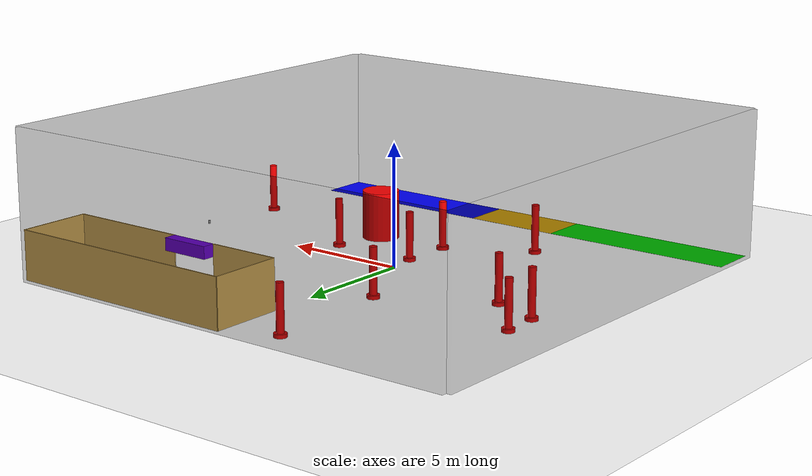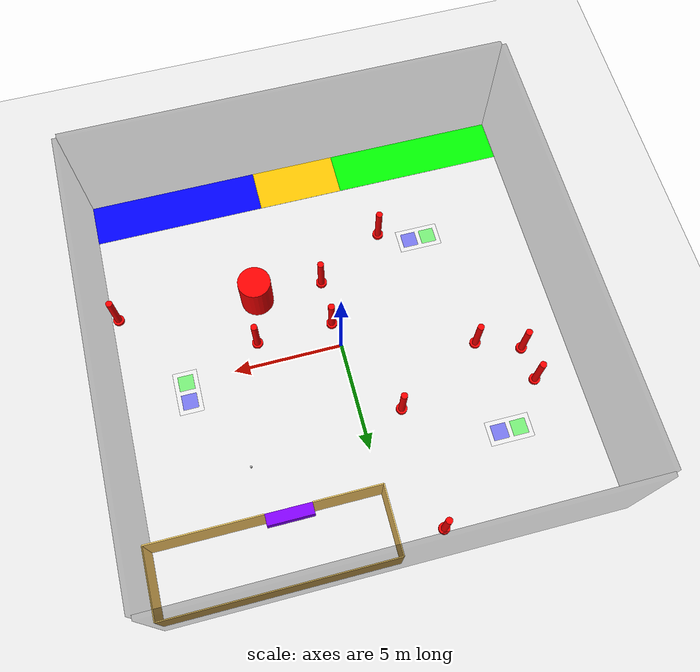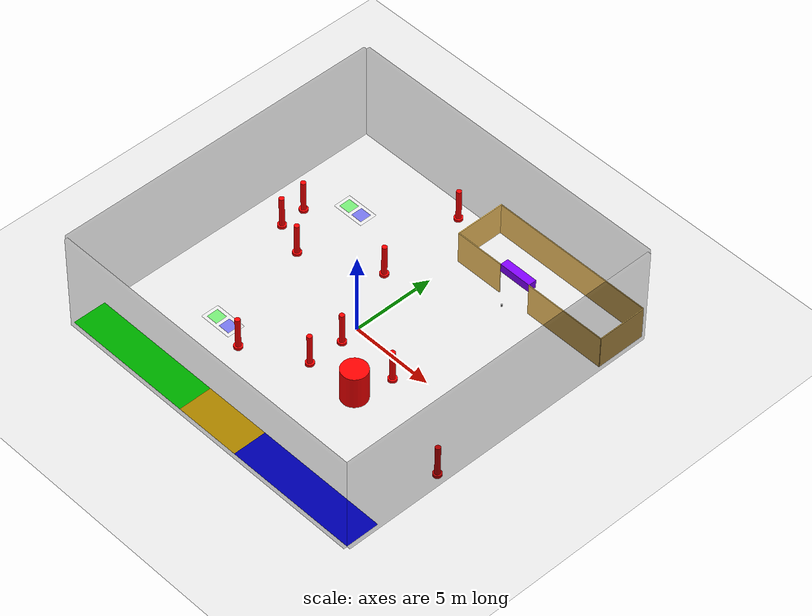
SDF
<sdf version='1.11'>
  <world name='safmc'>
    <gravity>0 0 -9.8000000000000007</gravity>
    <magnetic_field>5.5644999999999998e-06 2.2875799999999999e-05 -4.2388400000000002e-05</magnetic_field>
    <wind>
      <linear_velocity>0 0 0</linear_velocity>
    </wind>
    <physics name='default_physics' default='false' type='ode'>
      <max_step_size>0.0040000000000000001</max_step_size>
      <real_time_factor>1</real_time_factor>
      <max_contacts>20</max_contacts>
    </physics>
    <model name='ground_plane'>
      <static>true</static>
      <self_collide>false</self_collide>
      <allow_auto_disable>true</allow_auto_disable>
      <enable_wind>false</enable_wind>
      <pose>0 0 0 0 0 0</pose>
      <link name='link'>
        <pose>0 0 0 0 0 0</pose>
        <inertial>
          <pose>0 0 0 0 0 0</pose>
          <mass>1</mass>
          <inertia>
            <ixx>1</ixx>
            <ixy>0</ixy>
            <ixz>0</ixz>
            <iyy>1</iyy>
            <iyz>0</iyz>
            <izz>1</izz>
          </inertia>
        </inertial>
        <enable_wind>false</enable_wind>
        <collision name='collision'>
          <pose>0 0 0 0 0 0</pose>
          <geometry>
            <plane>
              <normal>0 0 1</normal>
              <size>25 25</size>
            </plane>
          </geometry>
          <surface>
            <contact>
              <collide_bitmask>255</collide_bitmask>
            </contact>
            <friction>
              <ode>
                <mu>1</mu>
                <mu2>1</mu2>
                <slip1>0</slip1>
                <slip2>0</slip2>
                <fdir1>0 0 0</fdir1>
              </ode>
            </friction>
          </surface>
        </collision>
        <visual name='visual'>
          <pose>0 0 0 0 0 0</pose>
          <geometry>
            <plane>
              <normal>0 0 1</normal>
              <size>25 25</size>
            </plane>
          </geometry>
          <cast_shadows>true</cast_shadows>
          <laser_retro>0</laser_retro>
          <transparency>0</transparency>
          <visibility_flags>4294967295</visibility_flags>
          <material>
            <ambient>0.800000012 0.800000012 0.800000012 1</ambient>
            <diffuse>0.800000012 0.800000012 0.800000012 1</diffuse>
            <specular>0.800000012 0.800000012 0.800000012 1</specular>
            <emissive>0 0 0 1</emissive>
            <render_order>0</render_order>
            <lighting>true</lighting>
            <double_sided>false</double_sided>
            <shader type='pixel'/>
          </material>
        </visual>
      </link>
    </model>
    <include>
      <uri>file://models/wall</uri>
      <name>front_wall</name>
      <pose>0 -10.1 2 0 0 0</pose>
      <static>true</static>
    </include>
    <include>
      <uri>file://models/wall</uri>
      <name>back_wall</name>
      <pose>0 10.1 2 0 0 0</pose>
      <static>true</static>
    </include>
    <include>
      <uri>file://models/wall</uri>
      <name>left_wall</name>
      <pose>-10.1 0 2 0 0 1.5707959999999999</pose>
      <static>true</static>
    </include>
    <include>
      <uri>file://models/wall</uri>
      <name>right_wall</name>
      <pose>10.1 0 2 0 0 1.5707959999999999</pose>
      <static>true</static>
    </include>
    <include>
      <uri>file://models/lidar</uri>
      <name>lidar</name>
      <pose>5.0999999999999996 5 2 0 0 1.5707959999999999</pose>
      <static>false</static>
    </include>
    <model name='launch_zone'>
      <static>true</static>
      <self_collide>false</self_collide>
      <allow_auto_disable>true</allow_auto_disable>
      <enable_wind>false</enable_wind>
      <pose>0 -9 0.001 0 0 0</pose>
      <link name='link'>
        <pose>0 0 0 0 0 0</pose>
        <inertial>
          <pose>0 0 0 0 0 0</pose>
          <mass>1</mass>
          <inertia>
            <ixx>1</ixx>
            <ixy>0</ixy>
            <ixz>0</ixz>
            <iyy>1</iyy>
            <iyz>0</iyz>
            <izz>1</izz>
          </inertia>
        </inertial>
        <enable_wind>false</enable_wind>
        <visual name='visual'>
          <pose>0 0 0 0 0 0</pose>
          <geometry>
            <plane>
              <normal>0 0 1</normal>
              <size>4 2</size>
            </plane>
          </geometry>
          <cast_shadows>true</cast_shadows>
          <laser_retro>0</laser_retro>
          <transparency>0</transparency>
          <visibility_flags>4294967295</visibility_flags>
          <material>
            <ambient>1 0.75 0 1</ambient>
            <diffuse>1 0.75 0 1</diffuse>
            <specular>1 0.75 0 1</specular>
            <emissive>0 0 0 1</emissive>
            <render_order>0</render_order>
            <lighting>true</lighting>
            <double_sided>false</double_sided>
            <shader type='pixel'/>
          </material>
        </visual>
      </link>
    </model>
    <model name='green_supply_zone'>
      <static>true</static>
      <self_collide>false</self_collide>
      <allow_auto_disable>true</allow_auto_disable>
      <enable_wind>false</enable_wind>
      <pose>-6 -9 0 0 0 0</pose>
      <link name='link'>
        <pose>0 0 0.001 0 0 0</pose>
        <inertial>
          <pose>0 0 0 0 0 0</pose>
          <mass>1</mass>
          <inertia>
            <ixx>1</ixx>
            <ixy>0</ixy>
            <ixz>0</ixz>
            <iyy>1</iyy>
            <iyz>0</iyz>
            <izz>1</izz>
          </inertia>
        </inertial>
        <enable_wind>false</enable_wind>
        <visual name='visual'>
          <pose>0 0 0 0 0 0</pose>
          <geometry>
            <plane>
              <normal>0 0 1</normal>
              <size>8 2</size>
            </plane>
          </geometry>
          <cast_shadows>true</cast_shadows>
          <laser_retro>0</laser_retro>
          <transparency>0</transparency>
          <visibility_flags>4294967295</visibility_flags>
          <material>
            <ambient>0 1 0 1</ambient>
            <diffuse>0 1 0 1</diffuse>
            <specular>0 1 0 1</specular>
            <emissive>0 0 0 1</emissive>
            <render_order>0</render_order>
            <lighting>true</lighting>
            <double_sided>false</double_sided>
            <shader type='pixel'/>
          </material>
        </visual>
      </link>
    </model>
    <model name='blue_supply_zone'>
      <static>true</static>
      <self_collide>false</self_collide>
      <allow_auto_disable>true</allow_auto_disable>
      <enable_wind>false</enable_wind>
      <pose>6 -9 0 0 0 0</pose>
      <link name='link'>
        <pose>0 0 0.001 0 0 0</pose>
        <inertial>
          <pose>0 0 0 0 0 0</pose>
          <mass>1</mass>
          <inertia>
            <ixx>1</ixx>
            <ixy>0</ixy>
            <ixz>0</ixz>
            <iyy>1</iyy>
            <iyz>0</iyz>
            <izz>1</izz>
          </inertia>
        </inertial>
        <enable_wind>false</enable_wind>
        <visual name='visual'>
          <pose>0 0 0 0 0 0</pose>
          <geometry>
            <plane>
              <normal>0 0 1</normal>
              <size>8 2</size>
            </plane>
          </geometry>
          <cast_shadows>true</cast_shadows>
          <laser_retro>0</laser_retro>
          <transparency>0</transparency>
          <visibility_flags>4294967295</visibility_flags>
          <material>
            <ambient>0 0 1 1</ambient>
            <diffuse>0 0 1 1</diffuse>
            <specular>0 0 1 1</specular>
            <emissive>0 0 0 1</emissive>
            <render_order>0</render_order>
            <lighting>true</lighting>
            <double_sided>false</double_sided>
            <shader type='pixel'/>
          </material>
        </visual>
      </link>
    </model>
    <include>
      <uri>file://models/bonus_zone</uri>
      <name>bonus_zone</name>
      <pose>5 8.5 1 0 0 0</pose>
      <static>true</static>
    </include>
    <model name='drop_zone_00'>
      <static>true</static>
      <self_collide>false</self_collide>
      <allow_auto_disable>true</allow_auto_disable>
      <enable_wind>false</enable_wind>
      <pose>-6.2134999999999998 5.6579699999999997 0 0 0 0</pose>
      <link name='link'>
        <pose>0 0 0 0 0 0</pose>
        <inertial>
          <pose>0 0 0 0 0 0</pose>
          <mass>1</mass>
          <inertia>
            <ixx>1</ixx>
            <ixy>0</ixy>
            <ixz>0</ixz>
            <iyy>1</iyy>
            <iyz>0</iyz>
            <izz>1</izz>
          </inertia>
        </inertial>
        <enable_wind>false</enable_wind>
        <visual name='drop_zone_visual'>
          <pose>0 0 0.001 0 0 0</pose>
          <geometry>
            <plane>
              <normal>0 0 1</normal>
              <size>2 1.1000000000000001</size>
            </plane>
          </geometry>
          <cast_shadows>true</cast_shadows>
          <laser_retro>0</laser_retro>
          <transparency>0</transparency>
          <visibility_flags>4294967295</visibility_flags>
          <material>
            <ambient>0.899999976 0.899999976 0.899999976 0.5</ambient>
            <diffuse>0.899999976 0.899999976 0.899999976 0.5</diffuse>
            <specular>0.899999976 0.899999976 0.899999976 0.5</specular>
            <emissive>0 0 0 1</emissive>
            <render_order>0</render_order>
            <lighting>true</lighting>
            <double_sided>false</double_sided>
            <shader type='pixel'/>
          </material>
        </visual>
        <visual name='green_hotspot_visual'>
          <pose>-0.45000000000000001 0 0.002 0 0 0</pose>
          <geometry>
            <plane>
              <normal>0 0 1</normal>
              <size>0.69999999999999996 0.69999999999999996</size>
            </plane>
          </geometry>
          <cast_shadows>true</cast_shadows>
          <laser_retro>0</laser_retro>
          <transparency>0</transparency>
          <visibility_flags>4294967295</visibility_flags>
          <material>
            <ambient>0 0.899999976 0 0.5</ambient>
            <diffuse>0 0.899999976 0 0.5</diffuse>
            <specular>0 0.899999976 0 0.5</specular>
            <emissive>0 0 0 1</emissive>
            <render_order>0</render_order>
            <lighting>true</lighting>
            <double_sided>false</double_sided>
            <shader type='pixel'/>
          </material>
        </visual>
        <visual name='blue_hotspot_visual'>
          <pose>0.45000000000000001 0 0.002 0 0 0</pose>
          <geometry>
            <plane>
              <normal>0 0 1</normal>
              <size>0.69999999999999996 0.69999999999999996</size>
            </plane>
          </geometry>
          <cast_shadows>true</cast_shadows>
          <laser_retro>0</laser_retro>
          <transparency>0</transparency>
          <visibility_flags>4294967295</visibility_flags>
          <material>
            <ambient>0 0 0.899999976 0.5</ambient>
            <diffuse>0 0 0.899999976 0.5</diffuse>
            <specular>0 0 0.899999976 0.5</specular>
            <emissive>0 0 0 1</emissive>
            <render_order>0</render_order>
            <lighting>true</lighting>
            <double_sided>false</double_sided>
            <shader type='pixel'/>
          </material>
        </visual>
      </link>
    </model>
    <model name='drop_zone_01'>
      <static>true</static>
      <self_collide>false</self_collide>
      <allow_auto_disable>true</allow_auto_disable>
      <enable_wind>false</enable_wind>
      <pose>-4.9895100000000001 -4.5204599999999999 0 0 0 0</pose>
      <link name='link'>
        <pose>0 0 0 0 0 0</pose>
        <inertial>
          <pose>0 0 0 0 0 0</pose>
          <mass>1</mass>
          <inertia>
            <ixx>1</ixx>
            <ixy>0</ixy>
            <ixz>0</ixz>
            <iyy>1</iyy>
            <iyz>0</iyz>
            <izz>1</izz>
          </inertia>
        </inertial>
        <enable_wind>false</enable_wind>
        <visual name='drop_zone_visual'>
          <pose>0 0 0.001 0 0 0</pose>
          <geometry>
            <plane>
              <normal>0 0 1</normal>
              <size>2 1.1000000000000001</size>
            </plane>
          </geometry>
          <cast_shadows>true</cast_shadows>
          <laser_retro>0</laser_retro>
          <transparency>0</transparency>
          <visibility_flags>4294967295</visibility_flags>
          <material>
            <ambient>0.899999976 0.899999976 0.899999976 0.5</ambient>
            <diffuse>0.899999976 0.899999976 0.899999976 0.5</diffuse>
            <specular>0.899999976 0.899999976 0.899999976 0.5</specular>
            <emissive>0 0 0 1</emissive>
            <render_order>0</render_order>
            <lighting>true</lighting>
            <double_sided>false</double_sided>
            <shader type='pixel'/>
          </material>
        </visual>
        <visual name='green_hotspot_visual'>
          <pose>-0.45000000000000001 0 0.002 0 0 0</pose>
          <geometry>
            <plane>
              <normal>0 0 1</normal>
              <size>0.69999999999999996 0.69999999999999996</size>
            </plane>
          </geometry>
          <cast_shadows>true</cast_shadows>
          <laser_retro>0</laser_retro>
          <transparency>0</transparency>
          <visibility_flags>4294967295</visibility_flags>
          <material>
            <ambient>0 0.899999976 0 0.5</ambient>
            <diffuse>0 0.899999976 0 0.5</diffuse>
            <specular>0 0.899999976 0 0.5</specular>
            <emissive>0 0 0 1</emissive>
            <render_order>0</render_order>
            <lighting>true</lighting>
            <double_sided>false</double_sided>
            <shader type='pixel'/>
          </material>
        </visual>
        <visual name='blue_hotspot_visual'>
          <pose>0.45000000000000001 0 0.002 0 0 0</pose>
          <geometry>
            <plane>
              <normal>0 0 1</normal>
              <size>0.69999999999999996 0.69999999999999996</size>
            </plane>
          </geometry>
          <cast_shadows>true</cast_shadows>
          <laser_retro>0</laser_retro>
          <transparency>0</transparency>
          <visibility_flags>4294967295</visibility_flags>
          <material>
            <ambient>0 0 0.899999976 0.5</ambient>
            <diffuse>0 0 0.899999976 0.5</diffuse>
            <specular>0 0 0.899999976 0.5</specular>
            <emissive>0 0 0 1</emissive>
            <render_order>0</render_order>
            <lighting>true</lighting>
            <double_sided>false</double_sided>
            <shader type='pixel'/>
          </material>
        </visual>
      </link>
    </model>
    <model name='drop_zone_02'>
      <static>true</static>
      <self_collide>false</self_collide>
      <allow_auto_disable>true</allow_auto_disable>
      <enable_wind>false</enable_wind>
      <pose>7.2181499999999996 0.43991000000000002 0 0 0 1.5707959999999999</pose>
      <link name='link'>
        <pose>0 0 0 0 0 0</pose>
        <inertial>
          <pose>0 0 0 0 0 0</pose>
          <mass>1</mass>
          <inertia>
            <ixx>1</ixx>
            <ixy>0</ixy>
            <ixz>0</ixz>
            <iyy>1</iyy>
            <iyz>0</iyz>
            <izz>1</izz>
          </inertia>
        </inertial>
        <enable_wind>false</enable_wind>
        <visual name='drop_zone_visual'>
          <pose>0 0 0.001 0 0 0</pose>
          <geometry>
            <plane>
              <normal>0 0 1</normal>
              <size>2 1.1000000000000001</size>
            </plane>
          </geometry>
          <cast_shadows>true</cast_shadows>
          <laser_retro>0</laser_retro>
          <transparency>0</transparency>
          <visibility_flags>4294967295</visibility_flags>
          <material>
            <ambient>0.899999976 0.899999976 0.899999976 0.5</ambient>
            <diffuse>0.899999976 0.899999976 0.899999976 0.5</diffuse>
            <specular>0.899999976 0.899999976 0.899999976 0.5</specular>
            <emissive>0 0 0 1</emissive>
            <render_order>0</render_order>
            <lighting>true</lighting>
            <double_sided>false</double_sided>
            <shader type='pixel'/>
          </material>
        </visual>
        <visual name='green_hotspot_visual'>
          <pose>-0.45000000000000001 0 0.002 0 0 0</pose>
          <geometry>
            <plane>
              <normal>0 0 1</normal>
              <size>0.69999999999999996 0.69999999999999996</size>
            </plane>
          </geometry>
          <cast_shadows>true</cast_shadows>
          <laser_retro>0</laser_retro>
          <transparency>0</transparency>
          <visibility_flags>4294967295</visibility_flags>
          <material>
            <ambient>0 0.899999976 0 0.5</ambient>
            <diffuse>0 0.899999976 0 0.5</diffuse>
            <specular>0 0.899999976 0 0.5</specular>
            <emissive>0 0 0 1</emissive>
            <render_order>0</render_order>
            <lighting>true</lighting>
            <double_sided>false</double_sided>
            <shader type='pixel'/>
          </material>
        </visual>
        <visual name='blue_hotspot_visual'>
          <pose>0.45000000000000001 0 0.002 0 0 0</pose>
          <geometry>
            <plane>
              <normal>0 0 1</normal>
              <size>0.69999999999999996 0.69999999999999996</size>
            </plane>
          </geometry>
          <cast_shadows>true</cast_shadows>
          <laser_retro>0</laser_retro>
          <transparency>0</transparency>
          <visibility_flags>4294967295</visibility_flags>
          <material>
            <ambient>0 0 0.899999976 0.5</ambient>
            <diffuse>0 0 0.899999976 0.5</diffuse>
            <specular>0 0 0.899999976 0.5</specular>
            <emissive>0 0 0 1</emissive>
            <render_order>0</render_order>
            <lighting>true</lighting>
            <double_sided>false</double_sided>
            <shader type='pixel'/>
          </material>
        </visual>
      </link>
    </model>
    <model name='large_pillar_obstacle_00'>
      <static>true</static>
      <self_collide>false</self_collide>
      <allow_auto_disable>true</allow_auto_disable>
      <enable_wind>false</enable_wind>
      <pose>3.2240899999999999 -3.19984 0 0 0 0</pose>
      <link name='link'>
        <pose>0 0 0 0 0 0</pose>
        <inertial>
          <pose>0 0 0 0 0 0</pose>
          <mass>1</mass>
          <inertia>
            <ixx>1</ixx>
            <ixy>0</ixy>
            <ixz>0</ixz>
            <iyy>1</iyy>
            <iyz>0</iyz>
            <izz>1</izz>
          </inertia>
        </inertial>
        <enable_wind>false</enable_wind>
        <collision name='collision'>
          <pose>0 0 1 0 0 0</pose>
          <geometry>
            <cylinder>
              <radius>0.75</radius>
              <length>2</length>
            </cylinder>
          </geometry>
          <surface>
            <contact>
              <collide_bitmask>255</collide_bitmask>
            </contact>
            <friction>
              <ode>
                <mu>1</mu>
                <mu2>1</mu2>
                <slip1>0</slip1>
                <slip2>0</slip2>
                <fdir1>0 0 0</fdir1>
              </ode>
            </friction>
          </surface>
        </collision>
        <visual name='visual'>
          <pose>0 0 1 0 0 0</pose>
          <geometry>
            <cylinder>
              <radius>0.75</radius>
              <length>2</length>
            </cylinder>
          </geometry>
          <cast_shadows>true</cast_shadows>
          <laser_retro>0</laser_retro>
          <transparency>0</transparency>
          <visibility_flags>4294967295</visibility_flags>
          <material>
            <ambient>1 0 0 1</ambient>
            <diffuse>1 0 0 1</diffuse>
            <specular>1 0 0 1</specular>
            <emissive>0 0 0 1</emissive>
            <render_order>0</render_order>
            <lighting>true</lighting>
            <double_sided>false</double_sided>
            <shader type='pixel'/>
          </material>
        </visual>
      </link>
    </model>
    <model name='small_pillar_obstacle_00'>
      <static>true</static>
      <self_collide>false</self_collide>
      <allow_auto_disable>true</allow_auto_disable>
      <enable_wind>false</enable_wind>
      <pose>-2.1469277330775327 9.1027249735675788 0 0 0 0</pose>
      <link name='link'>
        <pose>0 0 0 0 0 0</pose>
        <inertial>
          <pose>0 0 0 0 0 0</pose>
          <mass>1</mass>
          <inertia>
            <ixx>1</ixx>
            <ixy>0</ixy>
            <ixz>0</ixz>
            <iyy>1</iyy>
            <iyz>0</iyz>
            <izz>1</izz>
          </inertia>
        </inertial>
        <enable_wind>false</enable_wind>
        <collision name='base_collision'>
          <pose>0 0 0.074999999999999997 0 0 0</pose>
          <geometry>
            <cylinder>
              <radius>0.25</radius>
              <length>0.14999999999999999</length>
            </cylinder>
          </geometry>
          <surface>
            <contact>
              <collide_bitmask>255</collide_bitmask>
            </contact>
            <friction>
              <ode>
                <mu>1</mu>
                <mu2>1</mu2>
                <slip1>0</slip1>
                <slip2>0</slip2>
                <fdir1>0 0 0</fdir1>
              </ode>
            </friction>
          </surface>
        </collision>
        <collision name='shaft_collision'>
          <pose>0 0 1.075 0 0 0</pose>
          <geometry>
            <cylinder>
              <radius>0.14999999999999999</radius>
              <length>1.8500000000000001</length>
            </cylinder>
          </geometry>
          <surface>
            <contact>
              <collide_bitmask>255</collide_bitmask>
            </contact>
            <friction>
              <ode>
                <mu>1</mu>
                <mu2>1</mu2>
                <slip1>0</slip1>
                <slip2>0</slip2>
                <fdir1>0 0 0</fdir1>
              </ode>
            </friction>
          </surface>
        </collision>
        <visual name='base_visual'>
          <pose>0 0 0.074999999999999997 0 0 0</pose>
          <geometry>
            <cylinder>
              <radius>0.25</radius>
              <length>0.14999999999999999</length>
            </cylinder>
          </geometry>
          <cast_shadows>true</cast_shadows>
          <laser_retro>0</laser_retro>
          <transparency>0</transparency>
          <visibility_flags>4294967295</visibility_flags>
          <material>
            <ambient>1 0 0 1</ambient>
            <diffuse>1 0 0 1</diffuse>
            <specular>1 0 0 1</specular>
            <emissive>0 0 0 1</emissive>
            <render_order>0</render_order>
            <lighting>true</lighting>
            <double_sided>false</double_sided>
            <shader type='pixel'/>
          </material>
        </visual>
        <visual name='shaft_visual'>
          <pose>0 0 1.075 0 0 0</pose>
          <geometry>
            <cylinder>
              <radius>0.14999999999999999</radius>
              <length>1.8500000000000001</length>
            </cylinder>
          </geometry>
          <cast_shadows>true</cast_shadows>
          <laser_retro>0</laser_retro>
          <transparency>0</transparency>
          <visibility_flags>4294967295</visibility_flags>
          <material>
            <ambient>1 0 0 1</ambient>
            <diffuse>1 0 0 1</diffuse>
            <specular>1 0 0 1</specular>
            <emissive>0 0 0 1</emissive>
            <render_order>0</render_order>
            <lighting>true</lighting>
            <double_sided>false</double_sided>
            <shader type='pixel'/>
          </material>
        </visual>
      </link>
    </model>
    <model name='small_pillar_obstacle_01'>
      <static>true</static>
      <self_collide>false</self_collide>
      <allow_auto_disable>true</allow_auto_disable>
      <enable_wind>false</enable_wind>
      <pose>-1.8470072651608564 3.5943811024300789 0 0 0 0</pose>
      <link name='link'>
        <pose>0 0 0 0 0 0</pose>
        <inertial>
          <pose>0 0 0 0 0 0</pose>
          <mass>1</mass>
          <inertia>
            <ixx>1</ixx>
            <ixy>0</ixy>
            <ixz>0</ixz>
            <iyy>1</iyy>
            <iyz>0</iyz>
            <izz>1</izz>
          </inertia>
        </inertial>
        <enable_wind>false</enable_wind>
        <collision name='base_collision'>
          <pose>0 0 0.074999999999999997 0 0 0</pose>
          <geometry>
            <cylinder>
              <radius>0.25</radius>
              <length>0.14999999999999999</length>
            </cylinder>
          </geometry>
          <surface>
            <contact>
              <collide_bitmask>255</collide_bitmask>
            </contact>
            <friction>
              <ode>
                <mu>1</mu>
                <mu2>1</mu2>
                <slip1>0</slip1>
                <slip2>0</slip2>
                <fdir1>0 0 0</fdir1>
              </ode>
            </friction>
          </surface>
        </collision>
        <collision name='shaft_collision'>
          <pose>0 0 1.075 0 0 0</pose>
          <geometry>
            <cylinder>
              <radius>0.14999999999999999</radius>
              <length>1.8500000000000001</length>
            </cylinder>
          </geometry>
          <surface>
            <contact>
              <collide_bitmask>255</collide_bitmask>
            </contact>
            <friction>
              <ode>
                <mu>1</mu>
                <mu2>1</mu2>
                <slip1>0</slip1>
                <slip2>0</slip2>
                <fdir1>0 0 0</fdir1>
              </ode>
            </friction>
          </surface>
        </collision>
        <visual name='base_visual'>
          <pose>0 0 0.074999999999999997 0 0 0</pose>
          <geometry>
            <cylinder>
              <radius>0.25</radius>
              <length>0.14999999999999999</length>
            </cylinder>
          </geometry>
          <cast_shadows>true</cast_shadows>
          <laser_retro>0</laser_retro>
          <transparency>0</transparency>
          <visibility_flags>4294967295</visibility_flags>
          <material>
            <ambient>1 0 0 1</ambient>
            <diffuse>1 0 0 1</diffuse>
            <specular>1 0 0 1</specular>
            <emissive>0 0 0 1</emissive>
            <render_order>0</render_order>
            <lighting>true</lighting>
            <double_sided>false</double_sided>
            <shader type='pixel'/>
          </material>
        </visual>
        <visual name='shaft_visual'>
          <pose>0 0 1.075 0 0 0</pose>
          <geometry>
            <cylinder>
              <radius>0.14999999999999999</radius>
              <length>1.8500000000000001</length>
            </cylinder>
          </geometry>
          <cast_shadows>true</cast_shadows>
          <laser_retro>0</laser_retro>
          <transparency>0</transparency>
          <visibility_flags>4294967295</visibility_flags>
          <material>
            <ambient>1 0 0 1</ambient>
            <diffuse>1 0 0 1</diffuse>
            <specular>1 0 0 1</specular>
            <emissive>0 0 0 1</emissive>
            <render_order>0</render_order>
            <lighting>true</lighting>
            <double_sided>false</double_sided>
            <shader type='pixel'/>
          </material>
        </visual>
      </link>
    </model>
    <model name='small_pillar_obstacle_02'>
      <static>true</static>
      <self_collide>false</self_collide>
      <allow_auto_disable>true</allow_auto_disable>
      <enable_wind>false</enable_wind>
      <pose>-5.9714115262230472 1.4000981512748236 0 0 0 0</pose>
      <link name='link'>
        <pose>0 0 0 0 0 0</pose>
        <inertial>
          <pose>0 0 0 0 0 0</pose>
          <mass>1</mass>
          <inertia>
            <ixx>1</ixx>
            <ixy>0</ixy>
            <ixz>0</ixz>
            <iyy>1</iyy>
            <iyz>0</iyz>
            <izz>1</izz>
          </inertia>
        </inertial>
        <enable_wind>false</enable_wind>
        <collision name='base_collision'>
          <pose>0 0 0.074999999999999997 0 0 0</pose>
          <geometry>
            <cylinder>
              <radius>0.25</radius>
              <length>0.14999999999999999</length>
            </cylinder>
          </geometry>
          <surface>
            <contact>
              <collide_bitmask>255</collide_bitmask>
            </contact>
            <friction>
              <ode>
                <mu>1</mu>
                <mu2>1</mu2>
                <slip1>0</slip1>
                <slip2>0</slip2>
                <fdir1>0 0 0</fdir1>
              </ode>
            </friction>
          </surface>
        </collision>
        <collision name='shaft_collision'>
          <pose>0 0 1.075 0 0 0</pose>
          <geometry>
            <cylinder>
              <radius>0.14999999999999999</radius>
              <length>1.8500000000000001</length>
            </cylinder>
          </geometry>
          <surface>
            <contact>
              <collide_bitmask>255</collide_bitmask>
            </contact>
            <friction>
              <ode>
                <mu>1</mu>
                <mu2>1</mu2>
                <slip1>0</slip1>
                <slip2>0</slip2>
                <fdir1>0 0 0</fdir1>
              </ode>
            </friction>
          </surface>
        </collision>
        <visual name='base_visual'>
          <pose>0 0 0.074999999999999997 0 0 0</pose>
          <geometry>
            <cylinder>
              <radius>0.25</radius>
              <length>0.14999999999999999</length>
            </cylinder>
          </geometry>
          <cast_shadows>true</cast_shadows>
          <laser_retro>0</laser_retro>
          <transparency>0</transparency>
          <visibility_flags>4294967295</visibility_flags>
          <material>
            <ambient>1 0 0 1</ambient>
            <diffuse>1 0 0 1</diffuse>
            <specular>1 0 0 1</specular>
            <emissive>0 0 0 1</emissive>
            <render_order>0</render_order>
            <lighting>true</lighting>
            <double_sided>false</double_sided>
            <shader type='pixel'/>
          </material>
        </visual>
        <visual name='shaft_visual'>
          <pose>0 0 1.075 0 0 0</pose>
          <geometry>
            <cylinder>
              <radius>0.14999999999999999</radius>
              <length>1.8500000000000001</length>
            </cylinder>
          </geometry>
          <cast_shadows>true</cast_shadows>
          <laser_retro>0</laser_retro>
          <transparency>0</transparency>
          <visibility_flags>4294967295</visibility_flags>
          <material>
            <ambient>1 0 0 1</ambient>
            <diffuse>1 0 0 1</diffuse>
            <specular>1 0 0 1</specular>
            <emissive>0 0 0 1</emissive>
            <render_order>0</render_order>
            <lighting>true</lighting>
            <double_sided>false</double_sided>
            <shader type='pixel'/>
          </material>
        </visual>
      </link>
    </model>
    <model name='small_pillar_obstacle_03'>
      <static>true</static>
      <self_collide>false</self_collide>
      <allow_auto_disable>true</allow_auto_disable>
      <enable_wind>false</enable_wind>
      <pose>0.1185930475598358 -3.3145634414492964 0 0 0 0</pose>
      <link name='link'>
        <pose>0 0 0 0 0 0</pose>
        <inertial>
          <pose>0 0 0 0 0 0</pose>
          <mass>1</mass>
          <inertia>
            <ixx>1</ixx>
            <ixy>0</ixy>
            <ixz>0</ixz>
            <iyy>1</iyy>
            <iyz>0</iyz>
            <izz>1</izz>
          </inertia>
        </inertial>
        <enable_wind>false</enable_wind>
        <collision name='base_collision'>
          <pose>0 0 0.074999999999999997 0 0 0</pose>
          <geometry>
            <cylinder>
              <radius>0.25</radius>
              <length>0.14999999999999999</length>
            </cylinder>
          </geometry>
          <surface>
            <contact>
              <collide_bitmask>255</collide_bitmask>
            </contact>
            <friction>
              <ode>
                <mu>1</mu>
                <mu2>1</mu2>
                <slip1>0</slip1>
                <slip2>0</slip2>
                <fdir1>0 0 0</fdir1>
              </ode>
            </friction>
          </surface>
        </collision>
        <collision name='shaft_collision'>
          <pose>0 0 1.075 0 0 0</pose>
          <geometry>
            <cylinder>
              <radius>0.14999999999999999</radius>
              <length>1.8500000000000001</length>
            </cylinder>
          </geometry>
          <surface>
            <contact>
              <collide_bitmask>255</collide_bitmask>
            </contact>
            <friction>
              <ode>
                <mu>1</mu>
                <mu2>1</mu2>
                <slip1>0</slip1>
                <slip2>0</slip2>
                <fdir1>0 0 0</fdir1>
              </ode>
            </friction>
          </surface>
        </collision>
        <visual name='base_visual'>
          <pose>0 0 0.074999999999999997 0 0 0</pose>
          <geometry>
            <cylinder>
              <radius>0.25</radius>
              <length>0.14999999999999999</length>
            </cylinder>
          </geometry>
          <cast_shadows>true</cast_shadows>
          <laser_retro>0</laser_retro>
          <transparency>0</transparency>
          <visibility_flags>4294967295</visibility_flags>
          <material>
            <ambient>1 0 0 1</ambient>
            <diffuse>1 0 0 1</diffuse>
            <specular>1 0 0 1</specular>
            <emissive>0 0 0 1</emissive>
            <render_order>0</render_order>
            <lighting>true</lighting>
            <double_sided>false</double_sided>
            <shader type='pixel'/>
          </material>
        </visual>
        <visual name='shaft_visual'>
          <pose>0 0 1.075 0 0 0</pose>
          <geometry>
            <cylinder>
              <radius>0.14999999999999999</radius>
              <length>1.8500000000000001</length>
            </cylinder>
          </geometry>
          <cast_shadows>true</cast_shadows>
          <laser_retro>0</laser_retro>
          <transparency>0</transparency>
          <visibility_flags>4294967295</visibility_flags>
          <material>
            <ambient>1 0 0 1</ambient>
            <diffuse>1 0 0 1</diffuse>
            <specular>1 0 0 1</specular>
            <emissive>0 0 0 1</emissive>
            <render_order>0</render_order>
            <lighting>true</lighting>
            <double_sided>false</double_sided>
            <shader type='pixel'/>
          </material>
        </visual>
      </link>
    </model>
    <model name='small_pillar_obstacle_04'>
      <static>true</static>
      <self_collide>false</self_collide>
      <allow_auto_disable>true</allow_auto_disable>
      <enable_wind>false</enable_wind>
      <pose>0.15369469593819218 -1.1750165712275908 0 0 0 0</pose>
      <link name='link'>
        <pose>0 0 0 0 0 0</pose>
        <inertial>
          <pose>0 0 0 0 0 0</pose>
          <mass>1</mass>
          <inertia>
            <ixx>1</ixx>
            <ixy>0</ixy>
            <ixz>0</ixz>
            <iyy>1</iyy>
            <iyz>0</iyz>
            <izz>1</izz>
          </inertia>
        </inertial>
        <enable_wind>false</enable_wind>
        <collision name='base_collision'>
          <pose>0 0 0.074999999999999997 0 0 0</pose>
          <geometry>
            <cylinder>
              <radius>0.25</radius>
              <length>0.14999999999999999</length>
            </cylinder>
          </geometry>
          <surface>
            <contact>
              <collide_bitmask>255</collide_bitmask>
            </contact>
            <friction>
              <ode>
                <mu>1</mu>
                <mu2>1</mu2>
                <slip1>0</slip1>
                <slip2>0</slip2>
                <fdir1>0 0 0</fdir1>
              </ode>
            </friction>
          </surface>
        </collision>
        <collision name='shaft_collision'>
          <pose>0 0 1.075 0 0 0</pose>
          <geometry>
            <cylinder>
              <radius>0.14999999999999999</radius>
              <length>1.8500000000000001</length>
            </cylinder>
          </geometry>
          <surface>
            <contact>
              <collide_bitmask>255</collide_bitmask>
            </contact>
            <friction>
              <ode>
                <mu>1</mu>
                <mu2>1</mu2>
                <slip1>0</slip1>
                <slip2>0</slip2>
                <fdir1>0 0 0</fdir1>
              </ode>
            </friction>
          </surface>
        </collision>
        <visual name='base_visual'>
          <pose>0 0 0.074999999999999997 0 0 0</pose>
          <geometry>
            <cylinder>
              <radius>0.25</radius>
              <length>0.14999999999999999</length>
            </cylinder>
          </geometry>
          <cast_shadows>true</cast_shadows>
          <laser_retro>0</laser_retro>
          <transparency>0</transparency>
          <visibility_flags>4294967295</visibility_flags>
          <material>
            <ambient>1 0 0 1</ambient>
            <diffuse>1 0 0 1</diffuse>
            <specular>1 0 0 1</specular>
            <emissive>0 0 0 1</emissive>
            <render_order>0</render_order>
            <lighting>true</lighting>
            <double_sided>false</double_sided>
            <shader type='pixel'/>
          </material>
        </visual>
        <visual name='shaft_visual'>
          <pose>0 0 1.075 0 0 0</pose>
          <geometry>
            <cylinder>
              <radius>0.14999999999999999</radius>
              <length>1.8500000000000001</length>
            </cylinder>
          </geometry>
          <cast_shadows>true</cast_shadows>
          <laser_retro>0</laser_retro>
          <transparency>0</transparency>
          <visibility_flags>4294967295</visibility_flags>
          <material>
            <ambient>1 0 0 1</ambient>
            <diffuse>1 0 0 1</diffuse>
            <specular>1 0 0 1</specular>
            <emissive>0 0 0 1</emissive>
            <render_order>0</render_order>
            <lighting>true</lighting>
            <double_sided>false</double_sided>
            <shader type='pixel'/>
          </material>
        </visual>
      </link>
    </model>
    <model name='small_pillar_obstacle_05'>
      <static>true</static>
      <self_collide>false</self_collide>
      <allow_auto_disable>true</allow_auto_disable>
      <enable_wind>false</enable_wind>
      <pose>-7.9424014259009645 2.156448689293601 0 0 0 0</pose>
      <link name='link'>
        <pose>0 0 0 0 0 0</pose>
        <inertial>
          <pose>0 0 0 0 0 0</pose>
          <mass>1</mass>
          <inertia>
            <ixx>1</ixx>
            <ixy>0</ixy>
            <ixz>0</ixz>
            <iyy>1</iyy>
            <iyz>0</iyz>
            <izz>1</izz>
          </inertia>
        </inertial>
        <enable_wind>false</enable_wind>
        <collision name='base_collision'>
          <pose>0 0 0.074999999999999997 0 0 0</pose>
          <geometry>
            <cylinder>
              <radius>0.25</radius>
              <length>0.14999999999999999</length>
            </cylinder>
          </geometry>
          <surface>
            <contact>
              <collide_bitmask>255</collide_bitmask>
            </contact>
            <friction>
              <ode>
                <mu>1</mu>
                <mu2>1</mu2>
                <slip1>0</slip1>
                <slip2>0</slip2>
                <fdir1>0 0 0</fdir1>
              </ode>
            </friction>
          </surface>
        </collision>
        <collision name='shaft_collision'>
          <pose>0 0 1.075 0 0 0</pose>
          <geometry>
            <cylinder>
              <radius>0.14999999999999999</radius>
              <length>1.8500000000000001</length>
            </cylinder>
          </geometry>
          <surface>
            <contact>
              <collide_bitmask>255</collide_bitmask>
            </contact>
            <friction>
              <ode>
                <mu>1</mu>
                <mu2>1</mu2>
                <slip1>0</slip1>
                <slip2>0</slip2>
                <fdir1>0 0 0</fdir1>
              </ode>
            </friction>
          </surface>
        </collision>
        <visual name='base_visual'>
          <pose>0 0 0.074999999999999997 0 0 0</pose>
          <geometry>
            <cylinder>
              <radius>0.25</radius>
              <length>0.14999999999999999</length>
            </cylinder>
          </geometry>
          <cast_shadows>true</cast_shadows>
          <laser_retro>0</laser_retro>
          <transparency>0</transparency>
          <visibility_flags>4294967295</visibility_flags>
          <material>
            <ambient>1 0 0 1</ambient>
            <diffuse>1 0 0 1</diffuse>
            <specular>1 0 0 1</specular>
            <emissive>0 0 0 1</emissive>
            <render_order>0</render_order>
            <lighting>true</lighting>
            <double_sided>false</double_sided>
            <shader type='pixel'/>
          </material>
        </visual>
        <visual name='shaft_visual'>
          <pose>0 0 1.075 0 0 0</pose>
          <geometry>
            <cylinder>
              <radius>0.14999999999999999</radius>
              <length>1.8500000000000001</length>
            </cylinder>
          </geometry>
          <cast_shadows>true</cast_shadows>
          <laser_retro>0</laser_retro>
          <transparency>0</transparency>
          <visibility_flags>4294967295</visibility_flags>
          <material>
            <ambient>1 0 0 1</ambient>
            <diffuse>1 0 0 1</diffuse>
            <specular>1 0 0 1</specular>
            <emissive>0 0 0 1</emissive>
            <render_order>0</render_order>
            <lighting>true</lighting>
            <double_sided>false</double_sided>
            <shader type='pixel'/>
          </material>
        </visual>
      </link>
    </model>
    <model name='small_pillar_obstacle_06'>
      <static>true</static>
      <self_collide>false</self_collide>
      <allow_auto_disable>true</allow_auto_disable>
      <enable_wind>false</enable_wind>
      <pose>3.687277213552866 -1.0726240060921981 0 0 0 0</pose>
      <link name='link'>
        <pose>0 0 0 0 0 0</pose>
        <inertial>
          <pose>0 0 0 0 0 0</pose>
          <mass>1</mass>
          <inertia>
            <ixx>1</ixx>
            <ixy>0</ixy>
            <ixz>0</ixz>
            <iyy>1</iyy>
            <iyz>0</iyz>
            <izz>1</izz>
          </inertia>
        </inertial>
        <enable_wind>false</enable_wind>
        <collision name='base_collision'>
          <pose>0 0 0.074999999999999997 0 0 0</pose>
          <geometry>
            <cylinder>
              <radius>0.25</radius>
              <length>0.14999999999999999</length>
            </cylinder>
          </geometry>
          <surface>
            <contact>
              <collide_bitmask>255</collide_bitmask>
            </contact>
            <friction>
              <ode>
                <mu>1</mu>
                <mu2>1</mu2>
                <slip1>0</slip1>
                <slip2>0</slip2>
                <fdir1>0 0 0</fdir1>
              </ode>
            </friction>
          </surface>
        </collision>
        <collision name='shaft_collision'>
          <pose>0 0 1.075 0 0 0</pose>
          <geometry>
            <cylinder>
              <radius>0.14999999999999999</radius>
              <length>1.8500000000000001</length>
            </cylinder>
          </geometry>
          <surface>
            <contact>
              <collide_bitmask>255</collide_bitmask>
            </contact>
            <friction>
              <ode>
                <mu>1</mu>
                <mu2>1</mu2>
                <slip1>0</slip1>
                <slip2>0</slip2>
                <fdir1>0 0 0</fdir1>
              </ode>
            </friction>
          </surface>
        </collision>
        <visual name='base_visual'>
          <pose>0 0 0.074999999999999997 0 0 0</pose>
          <geometry>
            <cylinder>
              <radius>0.25</radius>
              <length>0.14999999999999999</length>
            </cylinder>
          </geometry>
          <cast_shadows>true</cast_shadows>
          <laser_retro>0</laser_retro>
          <transparency>0</transparency>
          <visibility_flags>4294967295</visibility_flags>
          <material>
            <ambient>1 0 0 1</ambient>
            <diffuse>1 0 0 1</diffuse>
            <specular>1 0 0 1</specular>
            <emissive>0 0 0 1</emissive>
            <render_order>0</render_order>
            <lighting>true</lighting>
            <double_sided>false</double_sided>
            <shader type='pixel'/>
          </material>
        </visual>
        <visual name='shaft_visual'>
          <pose>0 0 1.075 0 0 0</pose>
          <geometry>
            <cylinder>
              <radius>0.14999999999999999</radius>
              <length>1.8500000000000001</length>
            </cylinder>
          </geometry>
          <cast_shadows>true</cast_shadows>
          <laser_retro>0</laser_retro>
          <transparency>0</transparency>
          <visibility_flags>4294967295</visibility_flags>
          <material>
            <ambient>1 0 0 1</ambient>
            <diffuse>1 0 0 1</diffuse>
            <specular>1 0 0 1</specular>
            <emissive>0 0 0 1</emissive>
            <render_order>0</render_order>
            <lighting>true</lighting>
            <double_sided>false</double_sided>
            <shader type='pixel'/>
          </material>
        </visual>
      </link>
    </model>
    <model name='small_pillar_obstacle_07'>
      <static>true</static>
      <self_collide>false</self_collide>
      <allow_auto_disable>true</allow_auto_disable>
      <enable_wind>false</enable_wind>
      <pose>-8.0351461349870732 3.7372583238193879 0 0 0 0</pose>
      <link name='link'>
        <pose>0 0 0 0 0 0</pose>
        <inertial>
          <pose>0 0 0 0 0 0</pose>
          <mass>1</mass>
          <inertia>
            <ixx>1</ixx>
            <ixy>0</ixy>
            <ixz>0</ixz>
            <iyy>1</iyy>
            <iyz>0</iyz>
            <izz>1</izz>
          </inertia>
        </inertial>
        <enable_wind>false</enable_wind>
        <collision name='base_collision'>
          <pose>0 0 0.074999999999999997 0 0 0</pose>
          <geometry>
            <cylinder>
              <radius>0.25</radius>
              <length>0.14999999999999999</length>
            </cylinder>
          </geometry>
          <surface>
            <contact>
              <collide_bitmask>255</collide_bitmask>
            </contact>
            <friction>
              <ode>
                <mu>1</mu>
                <mu2>1</mu2>
                <slip1>0</slip1>
                <slip2>0</slip2>
                <fdir1>0 0 0</fdir1>
              </ode>
            </friction>
          </surface>
        </collision>
        <collision name='shaft_collision'>
          <pose>0 0 1.075 0 0 0</pose>
          <geometry>
            <cylinder>
              <radius>0.14999999999999999</radius>
              <length>1.8500000000000001</length>
            </cylinder>
          </geometry>
          <surface>
            <contact>
              <collide_bitmask>255</collide_bitmask>
            </contact>
            <friction>
              <ode>
                <mu>1</mu>
                <mu2>1</mu2>
                <slip1>0</slip1>
                <slip2>0</slip2>
                <fdir1>0 0 0</fdir1>
              </ode>
            </friction>
          </surface>
        </collision>
        <visual name='base_visual'>
          <pose>0 0 0.074999999999999997 0 0 0</pose>
          <geometry>
            <cylinder>
              <radius>0.25</radius>
              <length>0.14999999999999999</length>
            </cylinder>
          </geometry>
          <cast_shadows>true</cast_shadows>
          <laser_retro>0</laser_retro>
          <transparency>0</transparency>
          <visibility_flags>4294967295</visibility_flags>
          <material>
            <ambient>1 0 0 1</ambient>
            <diffuse>1 0 0 1</diffuse>
            <specular>1 0 0 1</specular>
            <emissive>0 0 0 1</emissive>
            <render_order>0</render_order>
            <lighting>true</lighting>
            <double_sided>false</double_sided>
            <shader type='pixel'/>
          </material>
        </visual>
        <visual name='shaft_visual'>
          <pose>0 0 1.075 0 0 0</pose>
          <geometry>
            <cylinder>
              <radius>0.14999999999999999</radius>
              <length>1.8500000000000001</length>
            </cylinder>
          </geometry>
          <cast_shadows>true</cast_shadows>
          <laser_retro>0</laser_retro>
          <transparency>0</transparency>
          <visibility_flags>4294967295</visibility_flags>
          <material>
            <ambient>1 0 0 1</ambient>
            <diffuse>1 0 0 1</diffuse>
            <specular>1 0 0 1</specular>
            <emissive>0 0 0 1</emissive>
            <render_order>0</render_order>
            <lighting>true</lighting>
            <double_sided>false</double_sided>
            <shader type='pixel'/>
          </material>
        </visual>
      </link>
    </model>
    <model name='small_pillar_obstacle_08'>
      <static>true</static>
      <self_collide>false</self_collide>
      <allow_auto_disable>true</allow_auto_disable>
      <enable_wind>false</enable_wind>
      <pose>-3.1371547997258382 -5.1427566022788547 0 0 0 0</pose>
      <link name='link'>
        <pose>0 0 0 0 0 0</pose>
        <inertial>
          <pose>0 0 0 0 0 0</pose>
          <mass>1</mass>
          <inertia>
            <ixx>1</ixx>
            <ixy>0</ixy>
            <ixz>0</ixz>
            <iyy>1</iyy>
            <iyz>0</iyz>
            <izz>1</izz>
          </inertia>
        </inertial>
        <enable_wind>false</enable_wind>
        <collision name='base_collision'>
          <pose>0 0 0.074999999999999997 0 0 0</pose>
          <geometry>
            <cylinder>
              <radius>0.25</radius>
              <length>0.14999999999999999</length>
            </cylinder>
          </geometry>
          <surface>
            <contact>
              <collide_bitmask>255</collide_bitmask>
            </contact>
            <friction>
              <ode>
                <mu>1</mu>
                <mu2>1</mu2>
                <slip1>0</slip1>
                <slip2>0</slip2>
                <fdir1>0 0 0</fdir1>
              </ode>
            </friction>
          </surface>
        </collision>
        <collision name='shaft_collision'>
          <pose>0 0 1.075 0 0 0</pose>
          <geometry>
            <cylinder>
              <radius>0.14999999999999999</radius>
              <length>1.8500000000000001</length>
            </cylinder>
          </geometry>
          <surface>
            <contact>
              <collide_bitmask>255</collide_bitmask>
            </contact>
            <friction>
              <ode>
                <mu>1</mu>
                <mu2>1</mu2>
                <slip1>0</slip1>
                <slip2>0</slip2>
                <fdir1>0 0 0</fdir1>
              </ode>
            </friction>
          </surface>
        </collision>
        <visual name='base_visual'>
          <pose>0 0 0.074999999999999997 0 0 0</pose>
          <geometry>
            <cylinder>
              <radius>0.25</radius>
              <length>0.14999999999999999</length>
            </cylinder>
          </geometry>
          <cast_shadows>true</cast_shadows>
          <laser_retro>0</laser_retro>
          <transparency>0</transparency>
          <visibility_flags>4294967295</visibility_flags>
          <material>
            <ambient>1 0 0 1</ambient>
            <diffuse>1 0 0 1</diffuse>
            <specular>1 0 0 1</specular>
            <emissive>0 0 0 1</emissive>
            <render_order>0</render_order>
            <lighting>true</lighting>
            <double_sided>false</double_sided>
            <shader type='pixel'/>
          </material>
        </visual>
        <visual name='shaft_visual'>
          <pose>0 0 1.075 0 0 0</pose>
          <geometry>
            <cylinder>
              <radius>0.14999999999999999</radius>
              <length>1.8500000000000001</length>
            </cylinder>
          </geometry>
          <cast_shadows>true</cast_shadows>
          <laser_retro>0</laser_retro>
          <transparency>0</transparency>
          <visibility_flags>4294967295</visibility_flags>
          <material>
            <ambient>1 0 0 1</ambient>
            <diffuse>1 0 0 1</diffuse>
            <specular>1 0 0 1</specular>
            <emissive>0 0 0 1</emissive>
            <render_order>0</render_order>
            <lighting>true</lighting>
            <double_sided>false</double_sided>
            <shader type='pixel'/>
          </material>
        </visual>
      </link>
    </model>
    <model name='small_pillar_obstacle_09'>
      <static>true</static>
      <self_collide>false</self_collide>
      <allow_auto_disable>true</allow_auto_disable>
      <enable_wind>false</enable_wind>
      <pose>9.6737312526735018 -3.7645634456606807 0 0 0 0</pose>
      <link name='link'>
        <pose>0 0 0 0 0 0</pose>
        <inertial>
          <pose>0 0 0 0 0 0</pose>
          <mass>1</mass>
          <inertia>
            <ixx>1</ixx>
            <ixy>0</ixy>
            <ixz>0</ixz>
            <iyy>1</iyy>
            <iyz>0</iyz>
            <izz>1</izz>
          </inertia>
        </inertial>
        <enable_wind>false</enable_wind>
        <collision name='base_collision'>
          <pose>0 0 0.074999999999999997 0 0 0</pose>
          <geometry>
            <cylinder>
              <radius>0.25</radius>
              <length>0.14999999999999999</length>
            </cylinder>
          </geometry>
          <surface>
            <contact>
              <collide_bitmask>255</collide_bitmask>
            </contact>
            <friction>
              <ode>
                <mu>1</mu>
                <mu2>1</mu2>
                <slip1>0</slip1>
                <slip2>0</slip2>
                <fdir1>0 0 0</fdir1>
              </ode>
            </friction>
          </surface>
        </collision>
        <collision name='shaft_collision'>
          <pose>0 0 1.075 0 0 0</pose>
          <geometry>
            <cylinder>
              <radius>0.14999999999999999</radius>
              <length>1.8500000000000001</length>
            </cylinder>
          </geometry>
          <surface>
            <contact>
              <collide_bitmask>255</collide_bitmask>
            </contact>
            <friction>
              <ode>
                <mu>1</mu>
                <mu2>1</mu2>
                <slip1>0</slip1>
                <slip2>0</slip2>
                <fdir1>0 0 0</fdir1>
              </ode>
            </friction>
          </surface>
        </collision>
        <visual name='base_visual'>
          <pose>0 0 0.074999999999999997 0 0 0</pose>
          <geometry>
            <cylinder>
              <radius>0.25</radius>
              <length>0.14999999999999999</length>
            </cylinder>
          </geometry>
          <cast_shadows>true</cast_shadows>
          <laser_retro>0</laser_retro>
          <transparency>0</transparency>
          <visibility_flags>4294967295</visibility_flags>
          <material>
            <ambient>1 0 0 1</ambient>
            <diffuse>1 0 0 1</diffuse>
            <specular>1 0 0 1</specular>
            <emissive>0 0 0 1</emissive>
            <render_order>0</render_order>
            <lighting>true</lighting>
            <double_sided>false</double_sided>
            <shader type='pixel'/>
          </material>
        </visual>
        <visual name='shaft_visual'>
          <pose>0 0 1.075 0 0 0</pose>
          <geometry>
            <cylinder>
              <radius>0.14999999999999999</radius>
              <length>1.8500000000000001</length>
            </cylinder>
          </geometry>
          <cast_shadows>true</cast_shadows>
          <laser_retro>0</laser_retro>
          <transparency>0</transparency>
          <visibility_flags>4294967295</visibility_flags>
          <material>
            <ambient>1 0 0 1</ambient>
            <diffuse>1 0 0 1</diffuse>
            <specular>1 0 0 1</specular>
            <emissive>0 0 0 1</emissive>
            <render_order>0</render_order>
            <lighting>true</lighting>
            <double_sided>false</double_sided>
            <shader type='pixel'/>
          </material>
        </visual>
      </link>
    </model>
    <light name='sun' type='directional'>
      <pose>0 0 10 0 0 0</pose>
      <cast_shadows>true</cast_shadows>
      <intensity>1</intensity>
      <direction>-0.5 0.10000000000000001 -0.90000000000000002</direction>
      <diffuse>0.800000012 0.800000012 0.800000012 1</diffuse>
      <specular>0.200000003 0.200000003 0.200000003 1</specular>
      <attenuation>
        <range>1000</range>
        <linear>0.01</linear>
        <constant>0.90000000000000002</constant>
        <quadratic>0.001</quadratic>
      </attenuation>
      <spot>
        <inner_angle>0</inner_angle>
        <outer_angle>0</outer_angle>
        <falloff>0</falloff>
      </spot>
    </light>
    <atmosphere type='adiabatic'>
      <temperature>288.14999999999998</temperature>
      <pressure>101325</pressure>
      <temperature_gradient>-0.0064999999999999997</temperature_gradient>
    </atmosphere>
    <scene>
      <ambient>0.400000006 0.400000006 0.400000006 1</ambient>
      <background>0.699999988 0.699999988 0.699999988 1</background>
      <grid>true</grid>
      <origin_visual>true</origin_visual>
      <shadows>true</shadows>
    </scene>
    <plugin name='gz::sim::systems::Sensors' filename='gz-sim-sensors-system'>
      <render_engine>ogre2</render_engine>
    </plugin>
  </world>
</sdf>

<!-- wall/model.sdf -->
<sdf version="1.11">
    <model name="wall">
        <pose>0 0 2.0 0 0 0</pose>
        <static>true</static>

        <link name="link">

            <visual name="visual">
                <cast_shadows>false</cast_shadows>
                <pose>0 0 0 0 0 0</pose>
                <geometry>
                    <box>
                        <size>20.0 0.2 8.0</size>
                    </box>
                </geometry>
                <material>
                    <ambient>0 0 0 0.3</ambient>
                    <diffuse>0 0 0 0.3</diffuse>
                    <specular>0 0 0 0.3</specular>
                </material>
            </visual>

        </link>
    </model>
</sdf>

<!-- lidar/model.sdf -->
<sdf version="1.7">
    <model name="velodyne_hdl-32">
        <link name="base">
            <pose>0 0 0.029335 0 0 0</pose>
            <inertial>
                <mass>1.2</mass>
                <inertia>
                    <ixx>0.001087473</ixx>
                    <iyy>0.001087473</iyy>
                    <izz>0.001092437</izz>
                    <ixy>0</ixy>
                    <ixz>0</ixz>
                    <iyz>0</iyz>
                </inertia>
            </inertial>
            <collision name="base_collision">
                <geometry>
                    <cylinder>
                        <radius>.04267</radius>
                        <length>.05867</length>
                    </cylinder>
                </geometry>
            </collision>
            <visual name="base_visual">
                <geometry>
                    <cylinder>
                        <radius>.04267</radius>
                        <length>.05867</length>
                    </cylinder>
                </geometry>
            </visual>
        </link>

        <link name="top">

            <pose>0 0 0.095455 0 0 0</pose>
            <inertial>
                <mass>0.1</mass>
                <inertia>
                    <ixx>0.000090623</ixx>
                    <iyy>0.000090623</iyy>
                    <izz>0.000091036</izz>
                    <ixy>0</ixy>
                    <ixz>0</ixz>
                    <iyz>0</iyz>
                </inertia>
            </inertial>
            <collision name="top_collision">
                <geometry>
                    <cylinder>
                        <radius>0.04267</radius>
                        <length>0.07357</length>
                    </cylinder>
                </geometry>
            </collision>

            <visual name="top_visual">
                <geometry>
                    <cylinder>
                        <radius>0.04267</radius>
                        <length>0.07357</length>
                    </cylinder>
                </geometry>
            </visual>

            <frame name="lidar_frame" attached_to='velodyne_hdl-32'>
                <pose>0 0 -0.004645 1.5707 0 0</pose>
            </frame>

            <sensor name='gpu_lidar' type='gpu_lidar'>

                <pose relative_to='lidar_frame'>0 0 0 0 0 0</pose>
                <topic>lidar</topic>
                <update_rate>10</update_rate>

                <ray>
                    <scan>
                        <horizontal>
                            <samples>1080</samples>
                            <resolution>1</resolution>
                            <min_angle>-1.57079633</min_angle>
                            <max_angle>1.57079633</max_angle>
                        </horizontal>
                        <vertical>
                            <samples>1</samples>
                            <resolution>0.01</resolution>
                            <min_angle>0</min_angle>
                            <max_angle>0</max_angle>
                        </vertical>
                    </scan>
                    <range>
                        <min>0.08</min>
                        <max>10.0</max>
                        <resolution>0.01</resolution>
                    </range>
                </ray>

                <always_on>1</always_on>
                <visualize>true</visualize>

            </sensor>

        </link>

        <joint type="revolute" name="joint">

            <pose>0 0 -0.036785 0 0 0</pose>

            <parent>base</parent>

            <child>top</child>

            <axis>

                <xyz>0 0 1</xyz>

                <limit>

                    <lower>-10000000000000000</lower>
                    <upper>10000000000000000</upper>
                </limit>
            </axis>
        </joint>
    </model>
</sdf>

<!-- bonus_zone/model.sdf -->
<sdf version="1.11">
    <model name="bonus_zone">
        <pose>0 0 0 0 0 0</pose>
        <static>true</static>
        <link name="link">

            <collision name="bonus_zone_left_wall_collision">
                <pose>-5.0 0 0 0 0 0</pose>
                <geometry>
                    <box>
                        <size>0.05 3.0 2.0 0 0 0</size>
                    </box>
                </geometry>
            </collision>

            <collision name="bonus_zone_right_wall_collision">
                <pose>5.0 0 0 0 0 0</pose>
                <geometry>
                    <box>
                        <size>0.05 3.0 2.0 0 0 0</size>
                    </box>
                </geometry>
            </collision>

            <collision name="bonus_zone_front_wall_left_part_collision">
                <pose>-3.5 -1.5 0 0 0 0</pose>
                <geometry>
                    <box>
                        <size>3.0 0.05 2.0 0 0 0</size>
                    </box>
                </geometry>
            </collision>

            <collision name="bonus_zone_front_wall_right_part_collision">
                <pose>2.5 -1.5 0 0 0 0</pose>
                <geometry>
                    <box>
                        <size>5.0 0.05 2.0 0 0 0</size>
                    </box>
                </geometry>
            </collision>

            <collision name="bonus_zone_back_wall_collision">
                <pose>0 1.5 0 0 0 0</pose>
                <geometry>
                    <box>
                        <size>10.0 0.05 2.0 0 0 0</size>
                    </box>
                </geometry>
            </collision>

            <collision name="bonus_zone_high_beam_collision">
                <pose>-1.0 -1.25 0.75 0 0 0</pose>
                <geometry>
                    <box>
                        <size>2.0 0.5 0.5 0 0 0</size>
                    </box>
                </geometry>
            </collision>

            <visual name="bonus_zone_left_wall_visual">
                <pose>-5.0 0 0 0 0 0</pose>
                <geometry>
                    <box>
                        <size>0.05 3.0 2.0 0 0 0</size>
                    </box>
                </geometry>
                <material>
                    <ambient>1.0 0.8 0.4 1.0</ambient>
                    <diffuse>1.0 0.8 0.4 1.0</diffuse>
                    <specular>1.0 0.8 0.4 1.0</specular>
                </material>
            </visual>

            <visual name="bonus_zone_right_wall_visual">
                <pose>5.0 0 0 0 0 0</pose>
                <geometry>
                    <box>
                        <size>0.05 3.0 2.0 0 0 0</size>
                    </box>
                </geometry>
                <material>
                    <ambient>1.0 0.8 0.4 1.0</ambient>
                    <diffuse>1.0 0.8 0.4 1.0</diffuse>
                    <specular>1.0 0.8 0.4 1.0</specular>
                </material>
            </visual>

            <visual name="bonus_zone_front_wall_left_part_visual">
                <pose>-3.5 -1.5 0 0 0 0</pose>
                <geometry>
                    <box>
                        <size>3.0 0.05 2.0 0 0 0</size>
                    </box>
                </geometry>
                <material>
                    <ambient>1.0 0.8 0.4 1.0</ambient>
                    <diffuse>1.0 0.8 0.4 1.0</diffuse>
                    <specular>1.0 0.8 0.4 1.0</specular>
                </material>
            </visual>

            <visual name="bonus_zone_front_wall_right_part_visual">
                <pose>2.5 -1.5 0 0 0 0</pose>
                <geometry>
                    <box>
                        <size>5.0 0.05 2.0 0 0 0</size>
                    </box>
                </geometry>
                <material>
                    <ambient>1.0 0.8 0.4 1.0</ambient>
                    <diffuse>1.0 0.8 0.4 1.0</diffuse>
                    <specular>1.0 0.8 0.4 1.0</specular>
                </material>
            </visual>

            <visual name="bonus_zone_back_wall_visual">
                <pose>0 1.5 0 0 0 0</pose>
                <geometry>
                    <box>
                        <size>10.0 0.05 2.0 0 0 0</size>
                    </box>
                </geometry>
                <material>
                    <ambient>1.0 0.8 0.4 1.0</ambient>
                    <diffuse>1.0 0.8 0.4 1.0</diffuse>
                    <specular>1.0 0.8 0.4 1.0</specular>
                </material>
            </visual>

            <visual name="bonus_zone_high_beam_visual">
                <pose>-1.0 -1.25 0.75 0 0 0</pose>
                <geometry>
                    <box>
                        <size>2.0 0.5 0.5 0 0 0</size>
                    </box>
                </geometry>
                <material>
                    <ambient>0.5 0 1.0 1.0</ambient>
                    <diffuse>0.5 0 1.0 1.0</diffuse>
                    <specular>0.5 0 1.0 1.0</specular>
                </material>
            </visual>

        </link>
    </model>
</sdf>
